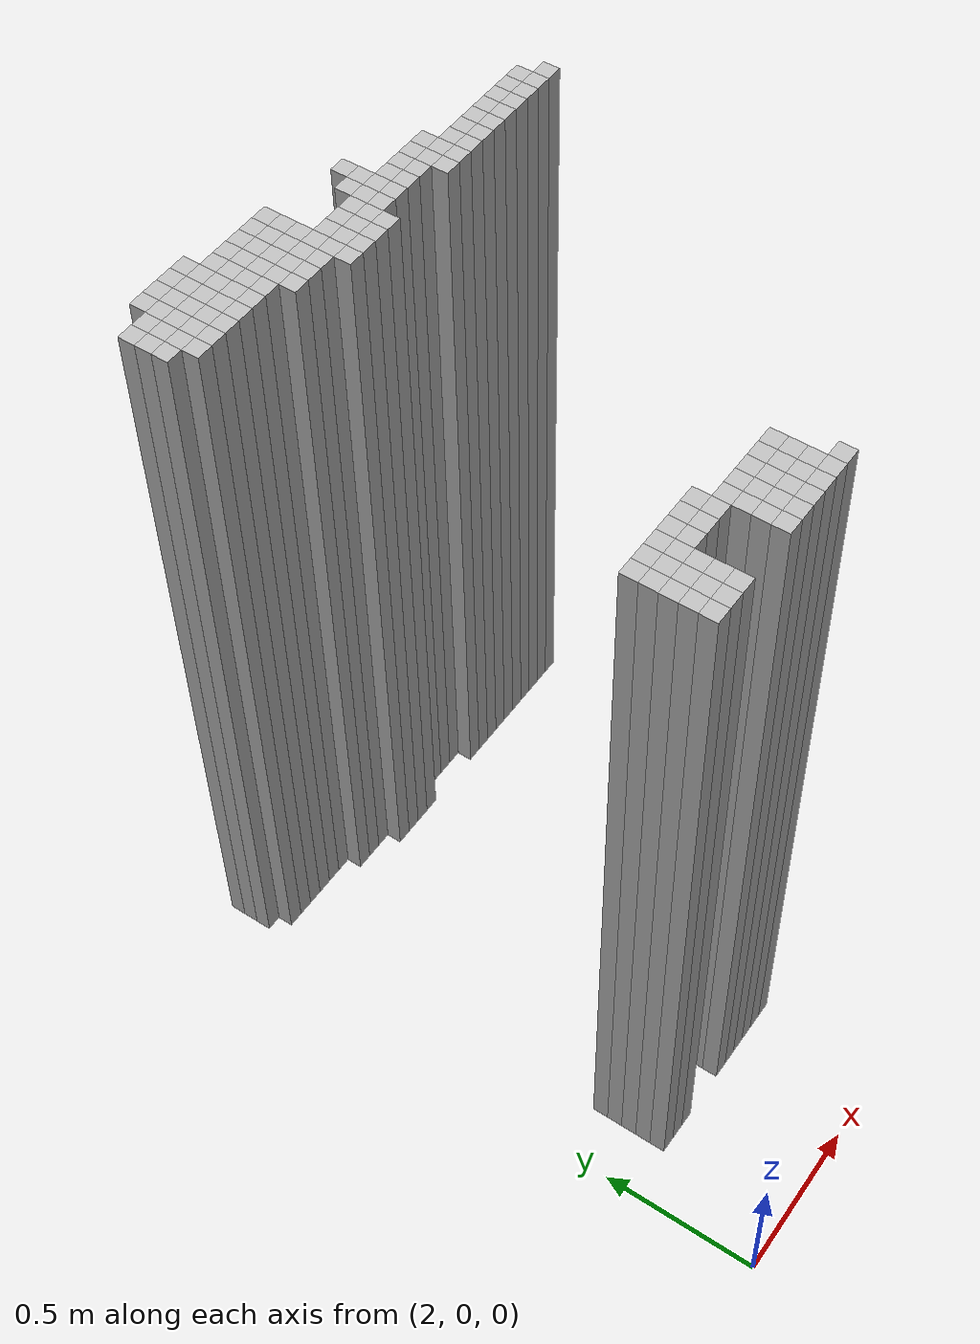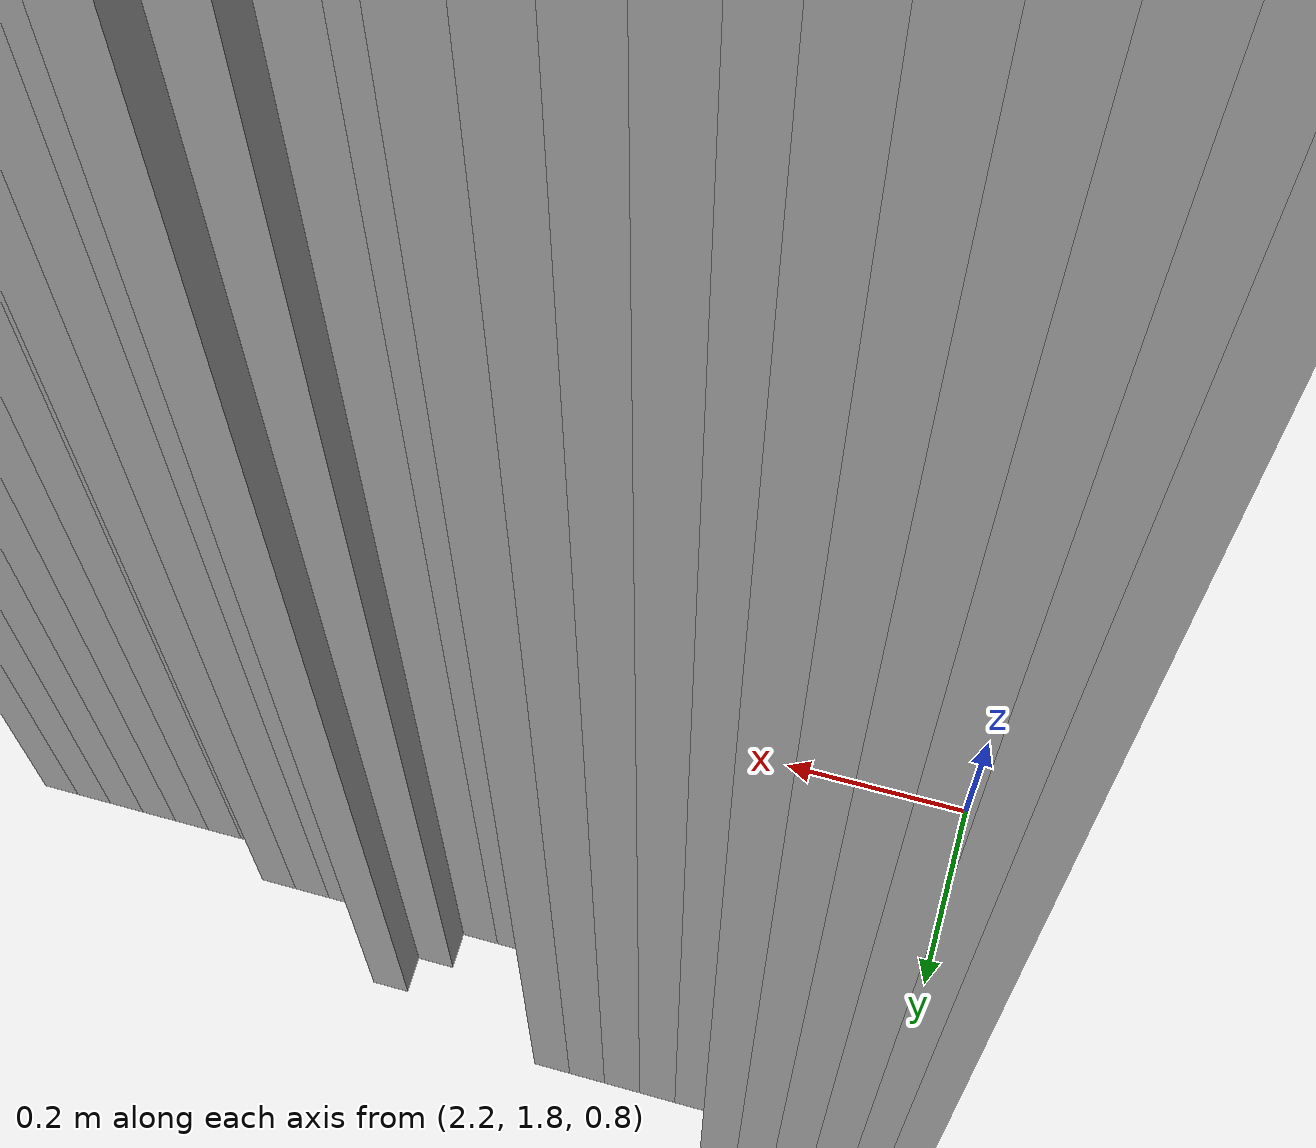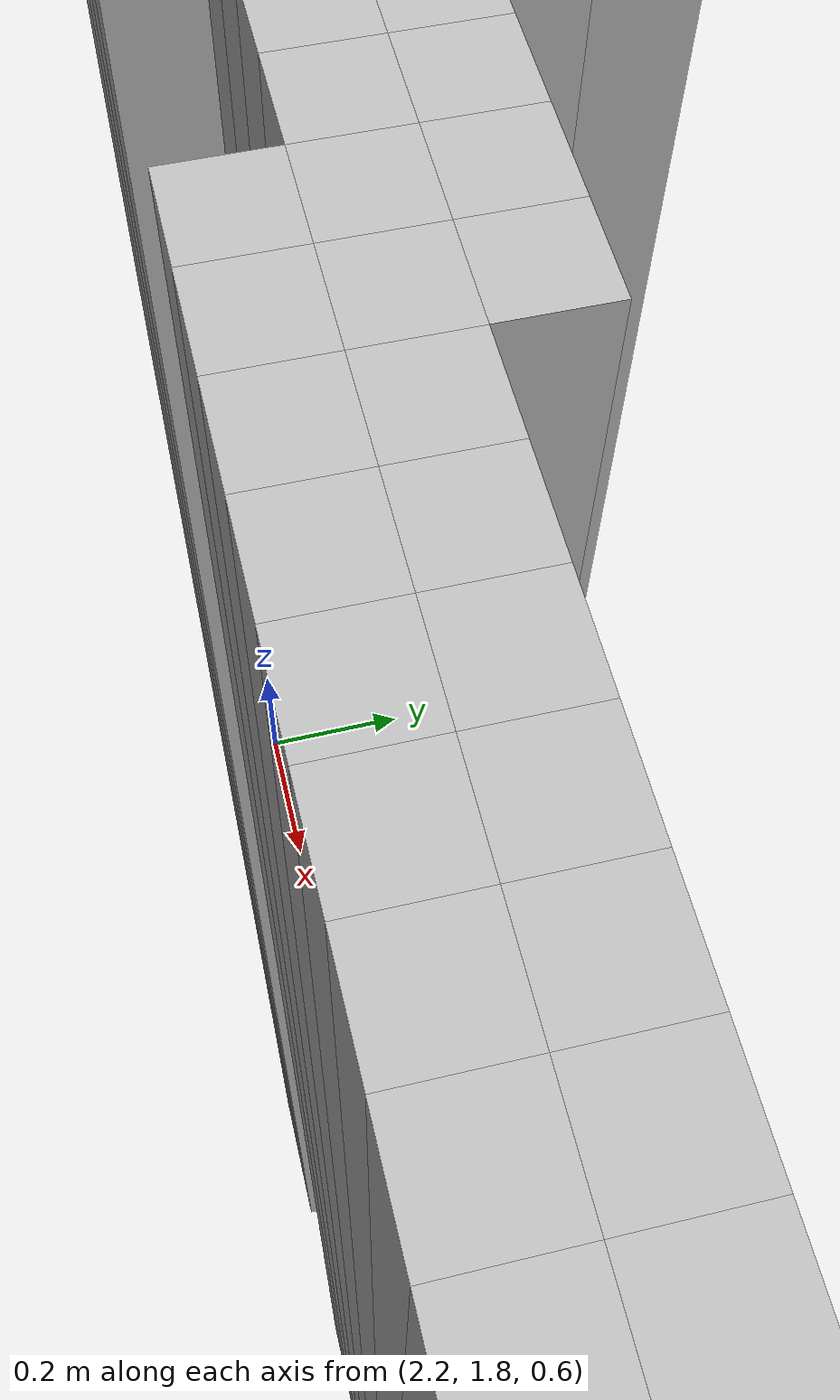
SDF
<sdf version="1.9">
 <world name="map_world">
  <model name="wall_268_113">
   <static>true</static>
   <pose>2.239 2.030 1.250 0 0 0</pose>
   <link name="link">
    <collision name="collision"><geometry><box><size>0.050 0.050 2.500</size></box></geometry></collision>
    <visual name="visual"><geometry><box><size>0.050 0.050 2.500</size></box></geometry></visual>
   </link>
  </model>
  <model name="wall_269_113">
   <static>true</static>
   <pose>2.289 2.030 1.250 0 0 0</pose>
   <link name="link">
    <collision name="collision"><geometry><box><size>0.050 0.050 2.500</size></box></geometry></collision>
    <visual name="visual"><geometry><box><size>0.050 0.050 2.500</size></box></geometry></visual>
   </link>
  </model>
  <model name="wall_270_113">
   <static>true</static>
   <pose>2.339 2.030 1.250 0 0 0</pose>
   <link name="link">
    <collision name="collision"><geometry><box><size>0.050 0.050 2.500</size></box></geometry></collision>
    <visual name="visual"><geometry><box><size>0.050 0.050 2.500</size></box></geometry></visual>
   </link>
  </model>
  <model name="wall_271_113">
   <static>true</static>
   <pose>2.389 2.030 1.250 0 0 0</pose>
   <link name="link">
    <collision name="collision"><geometry><box><size>0.050 0.050 2.500</size></box></geometry></collision>
    <visual name="visual"><geometry><box><size>0.050 0.050 2.500</size></box></geometry></visual>
   </link>
  </model>
  <model name="wall_266_114">
   <static>true</static>
   <pose>2.139 1.980 1.250 0 0 0</pose>
   <link name="link">
    <collision name="collision"><geometry><box><size>0.050 0.050 2.500</size></box></geometry></collision>
    <visual name="visual"><geometry><box><size>0.050 0.050 2.500</size></box></geometry></visual>
   </link>
  </model>
  <model name="wall_267_114">
   <static>true</static>
   <pose>2.189 1.980 1.250 0 0 0</pose>
   <link name="link">
    <collision name="collision"><geometry><box><size>0.050 0.050 2.500</size></box></geometry></collision>
    <visual name="visual"><geometry><box><size>0.050 0.050 2.500</size></box></geometry></visual>
   </link>
  </model>
  <model name="wall_268_114">
   <static>true</static>
   <pose>2.239 1.980 1.250 0 0 0</pose>
   <link name="link">
    <collision name="collision"><geometry><box><size>0.050 0.050 2.500</size></box></geometry></collision>
    <visual name="visual"><geometry><box><size>0.050 0.050 2.500</size></box></geometry></visual>
   </link>
  </model>
  <model name="wall_269_114">
   <static>true</static>
   <pose>2.289 1.980 1.250 0 0 0</pose>
   <link name="link">
    <collision name="collision"><geometry><box><size>0.050 0.050 2.500</size></box></geometry></collision>
    <visual name="visual"><geometry><box><size>0.050 0.050 2.500</size></box></geometry></visual>
   </link>
  </model>
  <model name="wall_270_114">
   <static>true</static>
   <pose>2.339 1.980 1.250 0 0 0</pose>
   <link name="link">
    <collision name="collision"><geometry><box><size>0.050 0.050 2.500</size></box></geometry></collision>
    <visual name="visual"><geometry><box><size>0.050 0.050 2.500</size></box></geometry></visual>
   </link>
  </model>
  <model name="wall_271_114">
   <static>true</static>
   <pose>2.389 1.980 1.250 0 0 0</pose>
   <link name="link">
    <collision name="collision"><geometry><box><size>0.050 0.050 2.500</size></box></geometry></collision>
    <visual name="visual"><geometry><box><size>0.050 0.050 2.500</size></box></geometry></visual>
   </link>
  </model>
  <model name="wall_272_114">
   <static>true</static>
   <pose>2.439 1.980 1.250 0 0 0</pose>
   <link name="link">
    <collision name="collision"><geometry><box><size>0.050 0.050 2.500</size></box></geometry></collision>
    <visual name="visual"><geometry><box><size>0.050 0.050 2.500</size></box></geometry></visual>
   </link>
  </model>
  <model name="wall_273_114">
   <static>true</static>
   <pose>2.489 1.980 1.250 0 0 0</pose>
   <link name="link">
    <collision name="collision"><geometry><box><size>0.050 0.050 2.500</size></box></geometry></collision>
    <visual name="visual"><geometry><box><size>0.050 0.050 2.500</size></box></geometry></visual>
   </link>
  </model>
  <model name="wall_274_114">
   <static>true</static>
   <pose>2.539 1.980 1.250 0 0 0</pose>
   <link name="link">
    <collision name="collision"><geometry><box><size>0.050 0.050 2.500</size></box></geometry></collision>
    <visual name="visual"><geometry><box><size>0.050 0.050 2.500</size></box></geometry></visual>
   </link>
  </model>
  <model name="wall_275_114">
   <static>true</static>
   <pose>2.589 1.980 1.250 0 0 0</pose>
   <link name="link">
    <collision name="collision"><geometry><box><size>0.050 0.050 2.500</size></box></geometry></collision>
    <visual name="visual"><geometry><box><size>0.050 0.050 2.500</size></box></geometry></visual>
   </link>
  </model>
  <model name="wall_276_114">
   <static>true</static>
   <pose>2.639 1.980 1.250 0 0 0</pose>
   <link name="link">
    <collision name="collision"><geometry><box><size>0.050 0.050 2.500</size></box></geometry></collision>
    <visual name="visual"><geometry><box><size>0.050 0.050 2.500</size></box></geometry></visual>
   </link>
  </model>
  <model name="wall_266_115">
   <static>true</static>
   <pose>2.139 1.930 1.250 0 0 0</pose>
   <link name="link">
    <collision name="collision"><geometry><box><size>0.050 0.050 2.500</size></box></geometry></collision>
    <visual name="visual"><geometry><box><size>0.050 0.050 2.500</size></box></geometry></visual>
   </link>
  </model>
  <model name="wall_267_115">
   <static>true</static>
   <pose>2.189 1.930 1.250 0 0 0</pose>
   <link name="link">
    <collision name="collision"><geometry><box><size>0.050 0.050 2.500</size></box></geometry></collision>
    <visual name="visual"><geometry><box><size>0.050 0.050 2.500</size></box></geometry></visual>
   </link>
  </model>
  <model name="wall_268_115">
   <static>true</static>
   <pose>2.239 1.930 1.250 0 0 0</pose>
   <link name="link">
    <collision name="collision"><geometry><box><size>0.050 0.050 2.500</size></box></geometry></collision>
    <visual name="visual"><geometry><box><size>0.050 0.050 2.500</size></box></geometry></visual>
   </link>
  </model>
  <model name="wall_269_115">
   <static>true</static>
   <pose>2.289 1.930 1.250 0 0 0</pose>
   <link name="link">
    <collision name="collision"><geometry><box><size>0.050 0.050 2.500</size></box></geometry></collision>
    <visual name="visual"><geometry><box><size>0.050 0.050 2.500</size></box></geometry></visual>
   </link>
  </model>
  <model name="wall_270_115">
   <static>true</static>
   <pose>2.339 1.930 1.250 0 0 0</pose>
   <link name="link">
    <collision name="collision"><geometry><box><size>0.050 0.050 2.500</size></box></geometry></collision>
    <visual name="visual"><geometry><box><size>0.050 0.050 2.500</size></box></geometry></visual>
   </link>
  </model>
  <model name="wall_271_115">
   <static>true</static>
   <pose>2.389 1.930 1.250 0 0 0</pose>
   <link name="link">
    <collision name="collision"><geometry><box><size>0.050 0.050 2.500</size></box></geometry></collision>
    <visual name="visual"><geometry><box><size>0.050 0.050 2.500</size></box></geometry></visual>
   </link>
  </model>
  <model name="wall_272_115">
   <static>true</static>
   <pose>2.439 1.930 1.250 0 0 0</pose>
   <link name="link">
    <collision name="collision"><geometry><box><size>0.050 0.050 2.500</size></box></geometry></collision>
    <visual name="visual"><geometry><box><size>0.050 0.050 2.500</size></box></geometry></visual>
   </link>
  </model>
  <model name="wall_273_115">
   <static>true</static>
   <pose>2.489 1.930 1.250 0 0 0</pose>
   <link name="link">
    <collision name="collision"><geometry><box><size>0.050 0.050 2.500</size></box></geometry></collision>
    <visual name="visual"><geometry><box><size>0.050 0.050 2.500</size></box></geometry></visual>
   </link>
  </model>
  <model name="wall_274_115">
   <static>true</static>
   <pose>2.539 1.930 1.250 0 0 0</pose>
   <link name="link">
    <collision name="collision"><geometry><box><size>0.050 0.050 2.500</size></box></geometry></collision>
    <visual name="visual"><geometry><box><size>0.050 0.050 2.500</size></box></geometry></visual>
   </link>
  </model>
  <model name="wall_275_115">
   <static>true</static>
   <pose>2.589 1.930 1.250 0 0 0</pose>
   <link name="link">
    <collision name="collision"><geometry><box><size>0.050 0.050 2.500</size></box></geometry></collision>
    <visual name="visual"><geometry><box><size>0.050 0.050 2.500</size></box></geometry></visual>
   </link>
  </model>
  <model name="wall_276_115">
   <static>true</static>
   <pose>2.639 1.930 1.250 0 0 0</pose>
   <link name="link">
    <collision name="collision"><geometry><box><size>0.050 0.050 2.500</size></box></geometry></collision>
    <visual name="visual"><geometry><box><size>0.050 0.050 2.500</size></box></geometry></visual>
   </link>
  </model>
  <model name="wall_281_115">
   <static>true</static>
   <pose>2.889 1.930 1.250 0 0 0</pose>
   <link name="link">
    <collision name="collision"><geometry><box><size>0.050 0.050 2.500</size></box></geometry></collision>
    <visual name="visual"><geometry><box><size>0.050 0.050 2.500</size></box></geometry></visual>
   </link>
  </model>
  <model name="wall_266_116">
   <static>true</static>
   <pose>2.139 1.880 1.250 0 0 0</pose>
   <link name="link">
    <collision name="collision"><geometry><box><size>0.050 0.050 2.500</size></box></geometry></collision>
    <visual name="visual"><geometry><box><size>0.050 0.050 2.500</size></box></geometry></visual>
   </link>
  </model>
  <model name="wall_267_116">
   <static>true</static>
   <pose>2.189 1.880 1.250 0 0 0</pose>
   <link name="link">
    <collision name="collision"><geometry><box><size>0.050 0.050 2.500</size></box></geometry></collision>
    <visual name="visual"><geometry><box><size>0.050 0.050 2.500</size></box></geometry></visual>
   </link>
  </model>
  <model name="wall_268_116">
   <static>true</static>
   <pose>2.239 1.880 1.250 0 0 0</pose>
   <link name="link">
    <collision name="collision"><geometry><box><size>0.050 0.050 2.500</size></box></geometry></collision>
    <visual name="visual"><geometry><box><size>0.050 0.050 2.500</size></box></geometry></visual>
   </link>
  </model>
  <model name="wall_269_116">
   <static>true</static>
   <pose>2.289 1.880 1.250 0 0 0</pose>
   <link name="link">
    <collision name="collision"><geometry><box><size>0.050 0.050 2.500</size></box></geometry></collision>
    <visual name="visual"><geometry><box><size>0.050 0.050 2.500</size></box></geometry></visual>
   </link>
  </model>
  <model name="wall_270_116">
   <static>true</static>
   <pose>2.339 1.880 1.250 0 0 0</pose>
   <link name="link">
    <collision name="collision"><geometry><box><size>0.050 0.050 2.500</size></box></geometry></collision>
    <visual name="visual"><geometry><box><size>0.050 0.050 2.500</size></box></geometry></visual>
   </link>
  </model>
  <model name="wall_271_116">
   <static>true</static>
   <pose>2.389 1.880 1.250 0 0 0</pose>
   <link name="link">
    <collision name="collision"><geometry><box><size>0.050 0.050 2.500</size></box></geometry></collision>
    <visual name="visual"><geometry><box><size>0.050 0.050 2.500</size></box></geometry></visual>
   </link>
  </model>
  <model name="wall_272_116">
   <static>true</static>
   <pose>2.439 1.880 1.250 0 0 0</pose>
   <link name="link">
    <collision name="collision"><geometry><box><size>0.050 0.050 2.500</size></box></geometry></collision>
    <visual name="visual"><geometry><box><size>0.050 0.050 2.500</size></box></geometry></visual>
   </link>
  </model>
  <model name="wall_273_116">
   <static>true</static>
   <pose>2.489 1.880 1.250 0 0 0</pose>
   <link name="link">
    <collision name="collision"><geometry><box><size>0.050 0.050 2.500</size></box></geometry></collision>
    <visual name="visual"><geometry><box><size>0.050 0.050 2.500</size></box></geometry></visual>
   </link>
  </model>
  <model name="wall_274_116">
   <static>true</static>
   <pose>2.539 1.880 1.250 0 0 0</pose>
   <link name="link">
    <collision name="collision"><geometry><box><size>0.050 0.050 2.500</size></box></geometry></collision>
    <visual name="visual"><geometry><box><size>0.050 0.050 2.500</size></box></geometry></visual>
   </link>
  </model>
  <model name="wall_275_116">
   <static>true</static>
   <pose>2.589 1.880 1.250 0 0 0</pose>
   <link name="link">
    <collision name="collision"><geometry><box><size>0.050 0.050 2.500</size></box></geometry></collision>
    <visual name="visual"><geometry><box><size>0.050 0.050 2.500</size></box></geometry></visual>
   </link>
  </model>
  <model name="wall_276_116">
   <static>true</static>
   <pose>2.639 1.880 1.250 0 0 0</pose>
   <link name="link">
    <collision name="collision"><geometry><box><size>0.050 0.050 2.500</size></box></geometry></collision>
    <visual name="visual"><geometry><box><size>0.050 0.050 2.500</size></box></geometry></visual>
   </link>
  </model>
  <model name="wall_280_116">
   <static>true</static>
   <pose>2.839 1.880 1.250 0 0 0</pose>
   <link name="link">
    <collision name="collision"><geometry><box><size>0.050 0.050 2.500</size></box></geometry></collision>
    <visual name="visual"><geometry><box><size>0.050 0.050 2.500</size></box></geometry></visual>
   </link>
  </model>
  <model name="wall_281_116">
   <static>true</static>
   <pose>2.889 1.880 1.250 0 0 0</pose>
   <link name="link">
    <collision name="collision"><geometry><box><size>0.050 0.050 2.500</size></box></geometry></collision>
    <visual name="visual"><geometry><box><size>0.050 0.050 2.500</size></box></geometry></visual>
   </link>
  </model>
  <model name="wall_267_117">
   <static>true</static>
   <pose>2.189 1.830 1.250 0 0 0</pose>
   <link name="link">
    <collision name="collision"><geometry><box><size>0.050 0.050 2.500</size></box></geometry></collision>
    <visual name="visual"><geometry><box><size>0.050 0.050 2.500</size></box></geometry></visual>
   </link>
  </model>
  <model name="wall_268_117">
   <static>true</static>
   <pose>2.239 1.830 1.250 0 0 0</pose>
   <link name="link">
    <collision name="collision"><geometry><box><size>0.050 0.050 2.500</size></box></geometry></collision>
    <visual name="visual"><geometry><box><size>0.050 0.050 2.500</size></box></geometry></visual>
   </link>
  </model>
  <model name="wall_269_117">
   <static>true</static>
   <pose>2.289 1.830 1.250 0 0 0</pose>
   <link name="link">
    <collision name="collision"><geometry><box><size>0.050 0.050 2.500</size></box></geometry></collision>
    <visual name="visual"><geometry><box><size>0.050 0.050 2.500</size></box></geometry></visual>
   </link>
  </model>
  <model name="wall_270_117">
   <static>true</static>
   <pose>2.339 1.830 1.250 0 0 0</pose>
   <link name="link">
    <collision name="collision"><geometry><box><size>0.050 0.050 2.500</size></box></geometry></collision>
    <visual name="visual"><geometry><box><size>0.050 0.050 2.500</size></box></geometry></visual>
   </link>
  </model>
  <model name="wall_271_117">
   <static>true</static>
   <pose>2.389 1.830 1.250 0 0 0</pose>
   <link name="link">
    <collision name="collision"><geometry><box><size>0.050 0.050 2.500</size></box></geometry></collision>
    <visual name="visual"><geometry><box><size>0.050 0.050 2.500</size></box></geometry></visual>
   </link>
  </model>
  <model name="wall_272_117">
   <static>true</static>
   <pose>2.439 1.830 1.250 0 0 0</pose>
   <link name="link">
    <collision name="collision"><geometry><box><size>0.050 0.050 2.500</size></box></geometry></collision>
    <visual name="visual"><geometry><box><size>0.050 0.050 2.500</size></box></geometry></visual>
   </link>
  </model>
  <model name="wall_273_117">
   <static>true</static>
   <pose>2.489 1.830 1.250 0 0 0</pose>
   <link name="link">
    <collision name="collision"><geometry><box><size>0.050 0.050 2.500</size></box></geometry></collision>
    <visual name="visual"><geometry><box><size>0.050 0.050 2.500</size></box></geometry></visual>
   </link>
  </model>
  <model name="wall_274_117">
   <static>true</static>
   <pose>2.539 1.830 1.250 0 0 0</pose>
   <link name="link">
    <collision name="collision"><geometry><box><size>0.050 0.050 2.500</size></box></geometry></collision>
    <visual name="visual"><geometry><box><size>0.050 0.050 2.500</size></box></geometry></visual>
   </link>
  </model>
  <model name="wall_275_117">
   <static>true</static>
   <pose>2.589 1.830 1.250 0 0 0</pose>
   <link name="link">
    <collision name="collision"><geometry><box><size>0.050 0.050 2.500</size></box></geometry></collision>
    <visual name="visual"><geometry><box><size>0.050 0.050 2.500</size></box></geometry></visual>
   </link>
  </model>
  <model name="wall_276_117">
   <static>true</static>
   <pose>2.639 1.830 1.250 0 0 0</pose>
   <link name="link">
    <collision name="collision"><geometry><box><size>0.050 0.050 2.500</size></box></geometry></collision>
    <visual name="visual"><geometry><box><size>0.050 0.050 2.500</size></box></geometry></visual>
   </link>
  </model>
  <model name="wall_277_117">
   <static>true</static>
   <pose>2.689 1.830 1.250 0 0 0</pose>
   <link name="link">
    <collision name="collision"><geometry><box><size>0.050 0.050 2.500</size></box></geometry></collision>
    <visual name="visual"><geometry><box><size>0.050 0.050 2.500</size></box></geometry></visual>
   </link>
  </model>
  <model name="wall_278_117">
   <static>true</static>
   <pose>2.739 1.830 1.250 0 0 0</pose>
   <link name="link">
    <collision name="collision"><geometry><box><size>0.050 0.050 2.500</size></box></geometry></collision>
    <visual name="visual"><geometry><box><size>0.050 0.050 2.500</size></box></geometry></visual>
   </link>
  </model>
  <model name="wall_279_117">
   <static>true</static>
   <pose>2.789 1.830 1.250 0 0 0</pose>
   <link name="link">
    <collision name="collision"><geometry><box><size>0.050 0.050 2.500</size></box></geometry></collision>
    <visual name="visual"><geometry><box><size>0.050 0.050 2.500</size></box></geometry></visual>
   </link>
  </model>
  <model name="wall_280_117">
   <static>true</static>
   <pose>2.839 1.830 1.250 0 0 0</pose>
   <link name="link">
    <collision name="collision"><geometry><box><size>0.050 0.050 2.500</size></box></geometry></collision>
    <visual name="visual"><geometry><box><size>0.050 0.050 2.500</size></box></geometry></visual>
   </link>
  </model>
  <model name="wall_281_117">
   <static>true</static>
   <pose>2.889 1.830 1.250 0 0 0</pose>
   <link name="link">
    <collision name="collision"><geometry><box><size>0.050 0.050 2.500</size></box></geometry></collision>
    <visual name="visual"><geometry><box><size>0.050 0.050 2.500</size></box></geometry></visual>
   </link>
  </model>
  <model name="wall_282_117">
   <static>true</static>
   <pose>2.939 1.830 1.250 0 0 0</pose>
   <link name="link">
    <collision name="collision"><geometry><box><size>0.050 0.050 2.500</size></box></geometry></collision>
    <visual name="visual"><geometry><box><size>0.050 0.050 2.500</size></box></geometry></visual>
   </link>
  </model>
  <model name="wall_283_117">
   <static>true</static>
   <pose>2.989 1.830 1.250 0 0 0</pose>
   <link name="link">
    <collision name="collision"><geometry><box><size>0.050 0.050 2.500</size></box></geometry></collision>
    <visual name="visual"><geometry><box><size>0.050 0.050 2.500</size></box></geometry></visual>
   </link>
  </model>
  <model name="wall_284_117">
   <static>true</static>
   <pose>3.039 1.830 1.250 0 0 0</pose>
   <link name="link">
    <collision name="collision"><geometry><box><size>0.050 0.050 2.500</size></box></geometry></collision>
    <visual name="visual"><geometry><box><size>0.050 0.050 2.500</size></box></geometry></visual>
   </link>
  </model>
  <model name="wall_285_117">
   <static>true</static>
   <pose>3.089 1.830 1.250 0 0 0</pose>
   <link name="link">
    <collision name="collision"><geometry><box><size>0.050 0.050 2.500</size></box></geometry></collision>
    <visual name="visual"><geometry><box><size>0.050 0.050 2.500</size></box></geometry></visual>
   </link>
  </model>
  <model name="wall_273_118">
   <static>true</static>
   <pose>2.489 1.780 1.250 0 0 0</pose>
   <link name="link">
    <collision name="collision"><geometry><box><size>0.050 0.050 2.500</size></box></geometry></collision>
    <visual name="visual"><geometry><box><size>0.050 0.050 2.500</size></box></geometry></visual>
   </link>
  </model>
  <model name="wall_274_118">
   <static>true</static>
   <pose>2.539 1.780 1.250 0 0 0</pose>
   <link name="link">
    <collision name="collision"><geometry><box><size>0.050 0.050 2.500</size></box></geometry></collision>
    <visual name="visual"><geometry><box><size>0.050 0.050 2.500</size></box></geometry></visual>
   </link>
  </model>
  <model name="wall_275_118">
   <static>true</static>
   <pose>2.589 1.780 1.250 0 0 0</pose>
   <link name="link">
    <collision name="collision"><geometry><box><size>0.050 0.050 2.500</size></box></geometry></collision>
    <visual name="visual"><geometry><box><size>0.050 0.050 2.500</size></box></geometry></visual>
   </link>
  </model>
  <model name="wall_276_118">
   <static>true</static>
   <pose>2.639 1.780 1.250 0 0 0</pose>
   <link name="link">
    <collision name="collision"><geometry><box><size>0.050 0.050 2.500</size></box></geometry></collision>
    <visual name="visual"><geometry><box><size>0.050 0.050 2.500</size></box></geometry></visual>
   </link>
  </model>
  <model name="wall_277_118">
   <static>true</static>
   <pose>2.689 1.780 1.250 0 0 0</pose>
   <link name="link">
    <collision name="collision"><geometry><box><size>0.050 0.050 2.500</size></box></geometry></collision>
    <visual name="visual"><geometry><box><size>0.050 0.050 2.500</size></box></geometry></visual>
   </link>
  </model>
  <model name="wall_278_118">
   <static>true</static>
   <pose>2.739 1.780 1.250 0 0 0</pose>
   <link name="link">
    <collision name="collision"><geometry><box><size>0.050 0.050 2.500</size></box></geometry></collision>
    <visual name="visual"><geometry><box><size>0.050 0.050 2.500</size></box></geometry></visual>
   </link>
  </model>
  <model name="wall_279_118">
   <static>true</static>
   <pose>2.789 1.780 1.250 0 0 0</pose>
   <link name="link">
    <collision name="collision"><geometry><box><size>0.050 0.050 2.500</size></box></geometry></collision>
    <visual name="visual"><geometry><box><size>0.050 0.050 2.500</size></box></geometry></visual>
   </link>
  </model>
  <model name="wall_280_118">
   <static>true</static>
   <pose>2.839 1.780 1.250 0 0 0</pose>
   <link name="link">
    <collision name="collision"><geometry><box><size>0.050 0.050 2.500</size></box></geometry></collision>
    <visual name="visual"><geometry><box><size>0.050 0.050 2.500</size></box></geometry></visual>
   </link>
  </model>
  <model name="wall_281_118">
   <static>true</static>
   <pose>2.889 1.780 1.250 0 0 0</pose>
   <link name="link">
    <collision name="collision"><geometry><box><size>0.050 0.050 2.500</size></box></geometry></collision>
    <visual name="visual"><geometry><box><size>0.050 0.050 2.500</size></box></geometry></visual>
   </link>
  </model>
  <model name="wall_282_118">
   <static>true</static>
   <pose>2.939 1.780 1.250 0 0 0</pose>
   <link name="link">
    <collision name="collision"><geometry><box><size>0.050 0.050 2.500</size></box></geometry></collision>
    <visual name="visual"><geometry><box><size>0.050 0.050 2.500</size></box></geometry></visual>
   </link>
  </model>
  <model name="wall_283_118">
   <static>true</static>
   <pose>2.989 1.780 1.250 0 0 0</pose>
   <link name="link">
    <collision name="collision"><geometry><box><size>0.050 0.050 2.500</size></box></geometry></collision>
    <visual name="visual"><geometry><box><size>0.050 0.050 2.500</size></box></geometry></visual>
   </link>
  </model>
  <model name="wall_284_118">
   <static>true</static>
   <pose>3.039 1.780 1.250 0 0 0</pose>
   <link name="link">
    <collision name="collision"><geometry><box><size>0.050 0.050 2.500</size></box></geometry></collision>
    <visual name="visual"><geometry><box><size>0.050 0.050 2.500</size></box></geometry></visual>
   </link>
  </model>
  <model name="wall_285_118">
   <static>true</static>
   <pose>3.089 1.780 1.250 0 0 0</pose>
   <link name="link">
    <collision name="collision"><geometry><box><size>0.050 0.050 2.500</size></box></geometry></collision>
    <visual name="visual"><geometry><box><size>0.050 0.050 2.500</size></box></geometry></visual>
   </link>
  </model>
  <model name="wall_286_118">
   <static>true</static>
   <pose>3.139 1.780 1.250 0 0 0</pose>
   <link name="link">
    <collision name="collision"><geometry><box><size>0.050 0.050 2.500</size></box></geometry></collision>
    <visual name="visual"><geometry><box><size>0.050 0.050 2.500</size></box></geometry></visual>
   </link>
  </model>
  <model name="wall_287_118">
   <static>true</static>
   <pose>3.189 1.780 1.250 0 0 0</pose>
   <link name="link">
    <collision name="collision"><geometry><box><size>0.050 0.050 2.500</size></box></geometry></collision>
    <visual name="visual"><geometry><box><size>0.050 0.050 2.500</size></box></geometry></visual>
   </link>
  </model>
  <model name="wall_288_118">
   <static>true</static>
   <pose>3.239 1.780 1.250 0 0 0</pose>
   <link name="link">
    <collision name="collision"><geometry><box><size>0.050 0.050 2.500</size></box></geometry></collision>
    <visual name="visual"><geometry><box><size>0.050 0.050 2.500</size></box></geometry></visual>
   </link>
  </model>
  <model name="wall_289_118">
   <static>true</static>
   <pose>3.289 1.780 1.250 0 0 0</pose>
   <link name="link">
    <collision name="collision"><geometry><box><size>0.050 0.050 2.500</size></box></geometry></collision>
    <visual name="visual"><geometry><box><size>0.050 0.050 2.500</size></box></geometry></visual>
   </link>
  </model>
  <model name="wall_290_118">
   <static>true</static>
   <pose>3.339 1.780 1.250 0 0 0</pose>
   <link name="link">
    <collision name="collision"><geometry><box><size>0.050 0.050 2.500</size></box></geometry></collision>
    <visual name="visual"><geometry><box><size>0.050 0.050 2.500</size></box></geometry></visual>
   </link>
  </model>
  <model name="wall_291_118">
   <static>true</static>
   <pose>3.389 1.780 1.250 0 0 0</pose>
   <link name="link">
    <collision name="collision"><geometry><box><size>0.050 0.050 2.500</size></box></geometry></collision>
    <visual name="visual"><geometry><box><size>0.050 0.050 2.500</size></box></geometry></visual>
   </link>
  </model>
  <model name="wall_292_118">
   <static>true</static>
   <pose>3.439 1.780 1.250 0 0 0</pose>
   <link name="link">
    <collision name="collision"><geometry><box><size>0.050 0.050 2.500</size></box></geometry></collision>
    <visual name="visual"><geometry><box><size>0.050 0.050 2.500</size></box></geometry></visual>
   </link>
  </model>
  <model name="wall_276_119">
   <static>true</static>
   <pose>2.639 1.730 1.250 0 0 0</pose>
   <link name="link">
    <collision name="collision"><geometry><box><size>0.050 0.050 2.500</size></box></geometry></collision>
    <visual name="visual"><geometry><box><size>0.050 0.050 2.500</size></box></geometry></visual>
   </link>
  </model>
  <model name="wall_277_119">
   <static>true</static>
   <pose>2.689 1.730 1.250 0 0 0</pose>
   <link name="link">
    <collision name="collision"><geometry><box><size>0.050 0.050 2.500</size></box></geometry></collision>
    <visual name="visual"><geometry><box><size>0.050 0.050 2.500</size></box></geometry></visual>
   </link>
  </model>
  <model name="wall_278_119">
   <static>true</static>
   <pose>2.739 1.730 1.250 0 0 0</pose>
   <link name="link">
    <collision name="collision"><geometry><box><size>0.050 0.050 2.500</size></box></geometry></collision>
    <visual name="visual"><geometry><box><size>0.050 0.050 2.500</size></box></geometry></visual>
   </link>
  </model>
  <model name="wall_279_119">
   <static>true</static>
   <pose>2.789 1.730 1.250 0 0 0</pose>
   <link name="link">
    <collision name="collision"><geometry><box><size>0.050 0.050 2.500</size></box></geometry></collision>
    <visual name="visual"><geometry><box><size>0.050 0.050 2.500</size></box></geometry></visual>
   </link>
  </model>
  <model name="wall_284_119">
   <static>true</static>
   <pose>3.039 1.730 1.250 0 0 0</pose>
   <link name="link">
    <collision name="collision"><geometry><box><size>0.050 0.050 2.500</size></box></geometry></collision>
    <visual name="visual"><geometry><box><size>0.050 0.050 2.500</size></box></geometry></visual>
   </link>
  </model>
  <model name="wall_285_119">
   <static>true</static>
   <pose>3.089 1.730 1.250 0 0 0</pose>
   <link name="link">
    <collision name="collision"><geometry><box><size>0.050 0.050 2.500</size></box></geometry></collision>
    <visual name="visual"><geometry><box><size>0.050 0.050 2.500</size></box></geometry></visual>
   </link>
  </model>
  <model name="wall_286_119">
   <static>true</static>
   <pose>3.139 1.730 1.250 0 0 0</pose>
   <link name="link">
    <collision name="collision"><geometry><box><size>0.050 0.050 2.500</size></box></geometry></collision>
    <visual name="visual"><geometry><box><size>0.050 0.050 2.500</size></box></geometry></visual>
   </link>
  </model>
  <model name="wall_287_119">
   <static>true</static>
   <pose>3.189 1.730 1.250 0 0 0</pose>
   <link name="link">
    <collision name="collision"><geometry><box><size>0.050 0.050 2.500</size></box></geometry></collision>
    <visual name="visual"><geometry><box><size>0.050 0.050 2.500</size></box></geometry></visual>
   </link>
  </model>
  <model name="wall_288_119">
   <static>true</static>
   <pose>3.239 1.730 1.250 0 0 0</pose>
   <link name="link">
    <collision name="collision"><geometry><box><size>0.050 0.050 2.500</size></box></geometry></collision>
    <visual name="visual"><geometry><box><size>0.050 0.050 2.500</size></box></geometry></visual>
   </link>
  </model>
  <model name="wall_289_119">
   <static>true</static>
   <pose>3.289 1.730 1.250 0 0 0</pose>
   <link name="link">
    <collision name="collision"><geometry><box><size>0.050 0.050 2.500</size></box></geometry></collision>
    <visual name="visual"><geometry><box><size>0.050 0.050 2.500</size></box></geometry></visual>
   </link>
  </model>
  <model name="wall_290_119">
   <static>true</static>
   <pose>3.339 1.730 1.250 0 0 0</pose>
   <link name="link">
    <collision name="collision"><geometry><box><size>0.050 0.050 2.500</size></box></geometry></collision>
    <visual name="visual"><geometry><box><size>0.050 0.050 2.500</size></box></geometry></visual>
   </link>
  </model>
  <model name="wall_291_119">
   <static>true</static>
   <pose>3.389 1.730 1.250 0 0 0</pose>
   <link name="link">
    <collision name="collision"><geometry><box><size>0.050 0.050 2.500</size></box></geometry></collision>
    <visual name="visual"><geometry><box><size>0.050 0.050 2.500</size></box></geometry></visual>
   </link>
  </model>
  <model name="wall_292_119">
   <static>true</static>
   <pose>3.439 1.730 1.250 0 0 0</pose>
   <link name="link">
    <collision name="collision"><geometry><box><size>0.050 0.050 2.500</size></box></geometry></collision>
    <visual name="visual"><geometry><box><size>0.050 0.050 2.500</size></box></geometry></visual>
   </link>
  </model>
  <model name="wall_293_119">
   <static>true</static>
   <pose>3.489 1.730 1.250 0 0 0</pose>
   <link name="link">
    <collision name="collision"><geometry><box><size>0.050 0.050 2.500</size></box></geometry></collision>
    <visual name="visual"><geometry><box><size>0.050 0.050 2.500</size></box></geometry></visual>
   </link>
  </model>
  <model name="wall_267_141">
   <static>true</static>
   <pose>2.189 0.630 1.250 0 0 0</pose>
   <link name="link">
    <collision name="collision"><geometry><box><size>0.050 0.050 2.500</size></box></geometry></collision>
    <visual name="visual"><geometry><box><size>0.050 0.050 2.500</size></box></geometry></visual>
   </link>
  </model>
  <model name="wall_268_141">
   <static>true</static>
   <pose>2.239 0.630 1.250 0 0 0</pose>
   <link name="link">
    <collision name="collision"><geometry><box><size>0.050 0.050 2.500</size></box></geometry></collision>
    <visual name="visual"><geometry><box><size>0.050 0.050 2.500</size></box></geometry></visual>
   </link>
  </model>
  <model name="wall_269_141">
   <static>true</static>
   <pose>2.289 0.630 1.250 0 0 0</pose>
   <link name="link">
    <collision name="collision"><geometry><box><size>0.050 0.050 2.500</size></box></geometry></collision>
    <visual name="visual"><geometry><box><size>0.050 0.050 2.500</size></box></geometry></visual>
   </link>
  </model>
  <model name="wall_270_141">
   <static>true</static>
   <pose>2.339 0.630 1.250 0 0 0</pose>
   <link name="link">
    <collision name="collision"><geometry><box><size>0.050 0.050 2.500</size></box></geometry></collision>
    <visual name="visual"><geometry><box><size>0.050 0.050 2.500</size></box></geometry></visual>
   </link>
  </model>
  <model name="wall_271_141">
   <static>true</static>
   <pose>2.389 0.630 1.250 0 0 0</pose>
   <link name="link">
    <collision name="collision"><geometry><box><size>0.050 0.050 2.500</size></box></geometry></collision>
    <visual name="visual"><geometry><box><size>0.050 0.050 2.500</size></box></geometry></visual>
   </link>
  </model>
  <model name="wall_272_141">
   <static>true</static>
   <pose>2.439 0.630 1.250 0 0 0</pose>
   <link name="link">
    <collision name="collision"><geometry><box><size>0.050 0.050 2.500</size></box></geometry></collision>
    <visual name="visual"><geometry><box><size>0.050 0.050 2.500</size></box></geometry></visual>
   </link>
  </model>
  <model name="wall_267_142">
   <static>true</static>
   <pose>2.189 0.580 1.250 0 0 0</pose>
   <link name="link">
    <collision name="collision"><geometry><box><size>0.050 0.050 2.500</size></box></geometry></collision>
    <visual name="visual"><geometry><box><size>0.050 0.050 2.500</size></box></geometry></visual>
   </link>
  </model>
  <model name="wall_268_142">
   <static>true</static>
   <pose>2.239 0.580 1.250 0 0 0</pose>
   <link name="link">
    <collision name="collision"><geometry><box><size>0.050 0.050 2.500</size></box></geometry></collision>
    <visual name="visual"><geometry><box><size>0.050 0.050 2.500</size></box></geometry></visual>
   </link>
  </model>
  <model name="wall_269_142">
   <static>true</static>
   <pose>2.289 0.580 1.250 0 0 0</pose>
   <link name="link">
    <collision name="collision"><geometry><box><size>0.050 0.050 2.500</size></box></geometry></collision>
    <visual name="visual"><geometry><box><size>0.050 0.050 2.500</size></box></geometry></visual>
   </link>
  </model>
  <model name="wall_270_142">
   <static>true</static>
   <pose>2.339 0.580 1.250 0 0 0</pose>
   <link name="link">
    <collision name="collision"><geometry><box><size>0.050 0.050 2.500</size></box></geometry></collision>
    <visual name="visual"><geometry><box><size>0.050 0.050 2.500</size></box></geometry></visual>
   </link>
  </model>
  <model name="wall_271_142">
   <static>true</static>
   <pose>2.389 0.580 1.250 0 0 0</pose>
   <link name="link">
    <collision name="collision"><geometry><box><size>0.050 0.050 2.500</size></box></geometry></collision>
    <visual name="visual"><geometry><box><size>0.050 0.050 2.500</size></box></geometry></visual>
   </link>
  </model>
  <model name="wall_272_142">
   <static>true</static>
   <pose>2.439 0.580 1.250 0 0 0</pose>
   <link name="link">
    <collision name="collision"><geometry><box><size>0.050 0.050 2.500</size></box></geometry></collision>
    <visual name="visual"><geometry><box><size>0.050 0.050 2.500</size></box></geometry></visual>
   </link>
  </model>
  <model name="wall_273_142">
   <static>true</static>
   <pose>2.489 0.580 1.250 0 0 0</pose>
   <link name="link">
    <collision name="collision"><geometry><box><size>0.050 0.050 2.500</size></box></geometry></collision>
    <visual name="visual"><geometry><box><size>0.050 0.050 2.500</size></box></geometry></visual>
   </link>
  </model>
  <model name="wall_274_142">
   <static>true</static>
   <pose>2.539 0.580 1.250 0 0 0</pose>
   <link name="link">
    <collision name="collision"><geometry><box><size>0.050 0.050 2.500</size></box></geometry></collision>
    <visual name="visual"><geometry><box><size>0.050 0.050 2.500</size></box></geometry></visual>
   </link>
  </model>
  <model name="wall_275_142">
   <static>true</static>
   <pose>2.589 0.580 1.250 0 0 0</pose>
   <link name="link">
    <collision name="collision"><geometry><box><size>0.050 0.050 2.500</size></box></geometry></collision>
    <visual name="visual"><geometry><box><size>0.050 0.050 2.500</size></box></geometry></visual>
   </link>
  </model>
  <model name="wall_276_142">
   <static>true</static>
   <pose>2.639 0.580 1.250 0 0 0</pose>
   <link name="link">
    <collision name="collision"><geometry><box><size>0.050 0.050 2.500</size></box></geometry></collision>
    <visual name="visual"><geometry><box><size>0.050 0.050 2.500</size></box></geometry></visual>
   </link>
  </model>
  <model name="wall_277_142">
   <static>true</static>
   <pose>2.689 0.580 1.250 0 0 0</pose>
   <link name="link">
    <collision name="collision"><geometry><box><size>0.050 0.050 2.500</size></box></geometry></collision>
    <visual name="visual"><geometry><box><size>0.050 0.050 2.500</size></box></geometry></visual>
   </link>
  </model>
  <model name="wall_267_143">
   <static>true</static>
   <pose>2.189 0.530 1.250 0 0 0</pose>
   <link name="link">
    <collision name="collision"><geometry><box><size>0.050 0.050 2.500</size></box></geometry></collision>
    <visual name="visual"><geometry><box><size>0.050 0.050 2.500</size></box></geometry></visual>
   </link>
  </model>
  <model name="wall_268_143">
   <static>true</static>
   <pose>2.239 0.530 1.250 0 0 0</pose>
   <link name="link">
    <collision name="collision"><geometry><box><size>0.050 0.050 2.500</size></box></geometry></collision>
    <visual name="visual"><geometry><box><size>0.050 0.050 2.500</size></box></geometry></visual>
   </link>
  </model>
  <model name="wall_269_143">
   <static>true</static>
   <pose>2.289 0.530 1.250 0 0 0</pose>
   <link name="link">
    <collision name="collision"><geometry><box><size>0.050 0.050 2.500</size></box></geometry></collision>
    <visual name="visual"><geometry><box><size>0.050 0.050 2.500</size></box></geometry></visual>
   </link>
  </model>
  <model name="wall_273_143">
   <static>true</static>
   <pose>2.489 0.530 1.250 0 0 0</pose>
   <link name="link">
    <collision name="collision"><geometry><box><size>0.050 0.050 2.500</size></box></geometry></collision>
    <visual name="visual"><geometry><box><size>0.050 0.050 2.500</size></box></geometry></visual>
   </link>
  </model>
  <model name="wall_274_143">
   <static>true</static>
   <pose>2.539 0.530 1.250 0 0 0</pose>
   <link name="link">
    <collision name="collision"><geometry><box><size>0.050 0.050 2.500</size></box></geometry></collision>
    <visual name="visual"><geometry><box><size>0.050 0.050 2.500</size></box></geometry></visual>
   </link>
  </model>
  <model name="wall_275_143">
   <static>true</static>
   <pose>2.589 0.530 1.250 0 0 0</pose>
   <link name="link">
    <collision name="collision"><geometry><box><size>0.050 0.050 2.500</size></box></geometry></collision>
    <visual name="visual"><geometry><box><size>0.050 0.050 2.500</size></box></geometry></visual>
   </link>
  </model>
  <model name="wall_276_143">
   <static>true</static>
   <pose>2.639 0.530 1.250 0 0 0</pose>
   <link name="link">
    <collision name="collision"><geometry><box><size>0.050 0.050 2.500</size></box></geometry></collision>
    <visual name="visual"><geometry><box><size>0.050 0.050 2.500</size></box></geometry></visual>
   </link>
  </model>
  <model name="wall_277_143">
   <static>true</static>
   <pose>2.689 0.530 1.250 0 0 0</pose>
   <link name="link">
    <collision name="collision"><geometry><box><size>0.050 0.050 2.500</size></box></geometry></collision>
    <visual name="visual"><geometry><box><size>0.050 0.050 2.500</size></box></geometry></visual>
   </link>
  </model>
  <model name="wall_267_144">
   <static>true</static>
   <pose>2.189 0.480 1.250 0 0 0</pose>
   <link name="link">
    <collision name="collision"><geometry><box><size>0.050 0.050 2.500</size></box></geometry></collision>
    <visual name="visual"><geometry><box><size>0.050 0.050 2.500</size></box></geometry></visual>
   </link>
  </model>
  <model name="wall_268_144">
   <static>true</static>
   <pose>2.239 0.480 1.250 0 0 0</pose>
   <link name="link">
    <collision name="collision"><geometry><box><size>0.050 0.050 2.500</size></box></geometry></collision>
    <visual name="visual"><geometry><box><size>0.050 0.050 2.500</size></box></geometry></visual>
   </link>
  </model>
  <model name="wall_269_144">
   <static>true</static>
   <pose>2.289 0.480 1.250 0 0 0</pose>
   <link name="link">
    <collision name="collision"><geometry><box><size>0.050 0.050 2.500</size></box></geometry></collision>
    <visual name="visual"><geometry><box><size>0.050 0.050 2.500</size></box></geometry></visual>
   </link>
  </model>
  <model name="wall_273_144">
   <static>true</static>
   <pose>2.489 0.480 1.250 0 0 0</pose>
   <link name="link">
    <collision name="collision"><geometry><box><size>0.050 0.050 2.500</size></box></geometry></collision>
    <visual name="visual"><geometry><box><size>0.050 0.050 2.500</size></box></geometry></visual>
   </link>
  </model>
  <model name="wall_274_144">
   <static>true</static>
   <pose>2.539 0.480 1.250 0 0 0</pose>
   <link name="link">
    <collision name="collision"><geometry><box><size>0.050 0.050 2.500</size></box></geometry></collision>
    <visual name="visual"><geometry><box><size>0.050 0.050 2.500</size></box></geometry></visual>
   </link>
  </model>
  <model name="wall_275_144">
   <static>true</static>
   <pose>2.589 0.480 1.250 0 0 0</pose>
   <link name="link">
    <collision name="collision"><geometry><box><size>0.050 0.050 2.500</size></box></geometry></collision>
    <visual name="visual"><geometry><box><size>0.050 0.050 2.500</size></box></geometry></visual>
   </link>
  </model>
  <model name="wall_276_144">
   <static>true</static>
   <pose>2.639 0.480 1.250 0 0 0</pose>
   <link name="link">
    <collision name="collision"><geometry><box><size>0.050 0.050 2.500</size></box></geometry></collision>
    <visual name="visual"><geometry><box><size>0.050 0.050 2.500</size></box></geometry></visual>
   </link>
  </model>
  <model name="wall_277_144">
   <static>true</static>
   <pose>2.689 0.480 1.250 0 0 0</pose>
   <link name="link">
    <collision name="collision"><geometry><box><size>0.050 0.050 2.500</size></box></geometry></collision>
    <visual name="visual"><geometry><box><size>0.050 0.050 2.500</size></box></geometry></visual>
   </link>
  </model>
  <model name="wall_267_145">
   <static>true</static>
   <pose>2.189 0.430 1.250 0 0 0</pose>
   <link name="link">
    <collision name="collision"><geometry><box><size>0.050 0.050 2.500</size></box></geometry></collision>
    <visual name="visual"><geometry><box><size>0.050 0.050 2.500</size></box></geometry></visual>
   </link>
  </model>
  <model name="wall_268_145">
   <static>true</static>
   <pose>2.239 0.430 1.250 0 0 0</pose>
   <link name="link">
    <collision name="collision"><geometry><box><size>0.050 0.050 2.500</size></box></geometry></collision>
    <visual name="visual"><geometry><box><size>0.050 0.050 2.500</size></box></geometry></visual>
   </link>
  </model>
  <model name="wall_269_145">
   <static>true</static>
   <pose>2.289 0.430 1.250 0 0 0</pose>
   <link name="link">
    <collision name="collision"><geometry><box><size>0.050 0.050 2.500</size></box></geometry></collision>
    <visual name="visual"><geometry><box><size>0.050 0.050 2.500</size></box></geometry></visual>
   </link>
  </model>
  <model name="wall_273_145">
   <static>true</static>
   <pose>2.489 0.430 1.250 0 0 0</pose>
   <link name="link">
    <collision name="collision"><geometry><box><size>0.050 0.050 2.500</size></box></geometry></collision>
    <visual name="visual"><geometry><box><size>0.050 0.050 2.500</size></box></geometry></visual>
   </link>
  </model>
  <model name="wall_274_145">
   <static>true</static>
   <pose>2.539 0.430 1.250 0 0 0</pose>
   <link name="link">
    <collision name="collision"><geometry><box><size>0.050 0.050 2.500</size></box></geometry></collision>
    <visual name="visual"><geometry><box><size>0.050 0.050 2.500</size></box></geometry></visual>
   </link>
  </model>
  <model name="wall_275_145">
   <static>true</static>
   <pose>2.589 0.430 1.250 0 0 0</pose>
   <link name="link">
    <collision name="collision"><geometry><box><size>0.050 0.050 2.500</size></box></geometry></collision>
    <visual name="visual"><geometry><box><size>0.050 0.050 2.500</size></box></geometry></visual>
   </link>
  </model>
  <model name="wall_276_145">
   <static>true</static>
   <pose>2.639 0.430 1.250 0 0 0</pose>
   <link name="link">
    <collision name="collision"><geometry><box><size>0.050 0.050 2.500</size></box></geometry></collision>
    <visual name="visual"><geometry><box><size>0.050 0.050 2.500</size></box></geometry></visual>
   </link>
  </model>
  <model name="wall_277_145">
   <static>true</static>
   <pose>2.689 0.430 1.250 0 0 0</pose>
   <link name="link">
    <collision name="collision"><geometry><box><size>0.050 0.050 2.500</size></box></geometry></collision>
    <visual name="visual"><geometry><box><size>0.050 0.050 2.500</size></box></geometry></visual>
   </link>
  </model>
  <model name="wall_278_145">
   <static>true</static>
   <pose>2.739 0.430 1.250 0 0 0</pose>
   <link name="link">
    <collision name="collision"><geometry><box><size>0.050 0.050 2.500</size></box></geometry></collision>
    <visual name="visual"><geometry><box><size>0.050 0.050 2.500</size></box></geometry></visual>
   </link>
  </model>
 </world>
</sdf>
